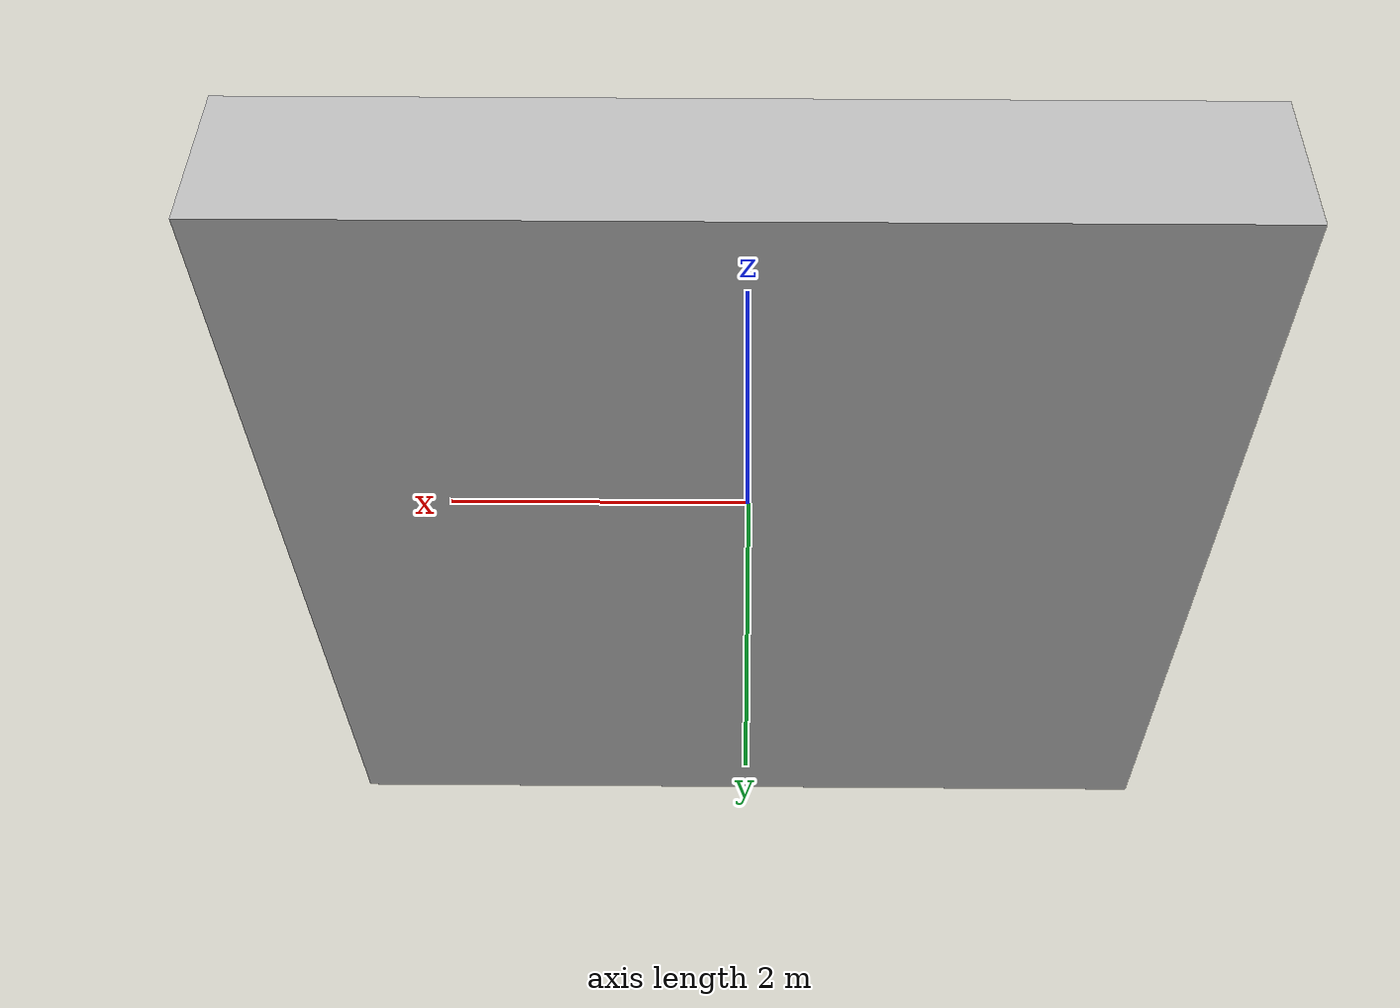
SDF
<?xml version="1.0"?>
<sdf version="1.6">
  <model name="Textured Wall">
    <static>true</static>
    <link name="robot_link">
      <collision name="body_collision">
        <geometry>
          <box>
            <size>1 1 1</size>
          </box>
        </geometry>
      </collision>
      <visual name="body_visual">
	 <geometry>
          <box>
            <size>6 1 6</size>
          </box>
        </geometry>
	 <material>
	      <script>
		      <uri>model://wallModel/materials/scripts</uri>
		      <uri>model://wallModel/materials/textures</uri>
		      <name>RepeatedTexture</name>
      	      </script>
         </material>
      </visual>
    </link>
  </model>
</sdf>
